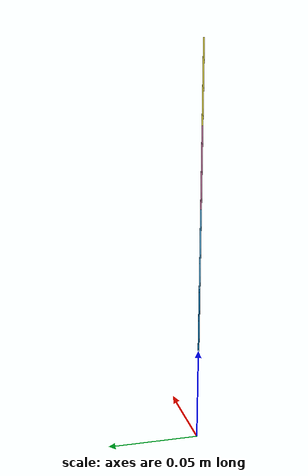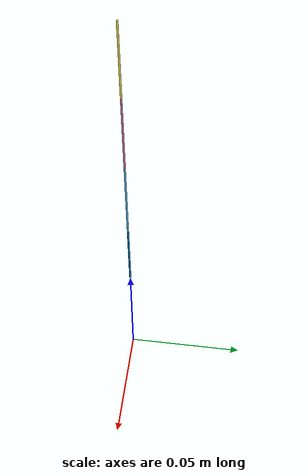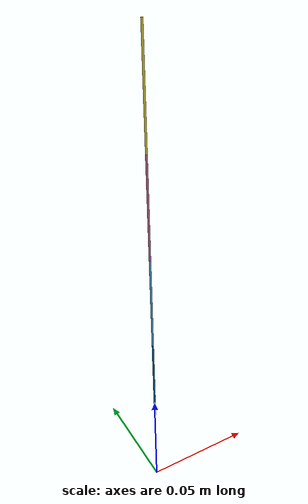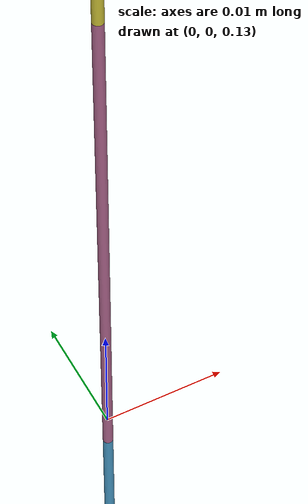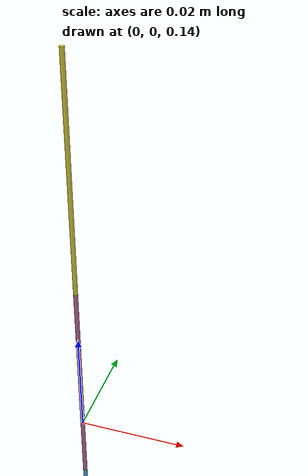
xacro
<?xml version="1.0"?>
<robot name="Needle" xmlns:xacro="http://www.ros.org/wiki/xacro">
  <xacro:include filename="$(find needle_description)/urdf/needle.xacro"/>
  <!--Maximum curvature approximation [1/m], Needle length [m], Needle diameter [m], Number of segments in mesh -->
  <xacro:needle_constructor aprx_crv="6" ndl_len="0.17" ndl_dia="0.00081" n_seg="4"/>
</robot>

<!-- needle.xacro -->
<robot xmlns:xacro="http://www.ros.org/wiki/xacro">
  <xacro:macro name="needle_segment" params="pre_name name radius length joint_limit">
    <joint name="${name}_fixed" type="fixed">
      <origin rpy="0 0 0" xyz="0 0 ${length}"/>
      <parent link="${pre_name}"/>
      <child link="${name}_fake_1"/>
    </joint>
    <link name="${name}_fake_1"/>
    <joint name="${name}_joint_1" type="revolute">
      <origin rpy="0 0 0" xyz="0 0 0"/>
      <parent link="${name}_fake_1"/>
      <child link="${name}_fake_2"/>
      <axis xyz="1 0 0"/>
      <limit upper="${joint_limit}" lower="${-joint_limit}" effort="1" velocity="1"/>
    </joint>
    <link name="${name}_fake_2"/>
     <joint name="${name}_joint_2" type="revolute">
      <origin rpy="0 0 0" xyz="0 0 0"/>
      <parent link="${name}_fake_2"/>
      <child link="${name}"/>
      <axis xyz="0 1 0"/>
      <limit upper="${joint_limit}" lower="${-joint_limit}" effort="1" velocity="1"/>
     </joint>
     <link name="${name}">
       <visual>
	 <origin rpy="0 0 0" xyz="0 0 ${length/2}"/>
	 <geometry>
	   <cylinder radius="${radius}" length="${length}"/>
	 </geometry>
       </visual>
     </link>
  </xacro:macro>

  <xacro:macro name="needle_seg_loop" params="pre_name name radius length joint_limit qty">
   <xacro:needle_segment pre_name="${pre_name}_${qty-1}" name="${pre_name}_${qty}" radius="${radius}" length="${length}" joint_limit="${joint_limit}"/>
   <xacro:if value="${qty-1}">
     <xacro:needle_seg_loop pre_name="${pre_name}" name="${name}" radius="${radius}" length="${length}" joint_limit="${joint_limit}"  qty="${qty-1}"/>
   </xacro:if>
  </xacro:macro>

  <xacro:macro name="needle_constructor" params="aprx_crv ndl_len ndl_dia n_seg">
    <link name="seg_0"/>
    <xacro:needle_seg_loop pre_name="seg" name="seg" radius="${ndl_dia/2}" length="${ndl_len/n_seg}" joint_limit="${aprx_crv*ndl_len/n_seg/2}" qty="${n_seg}"/>
    <joint name="needle_tip_joint" type="fixed">
      <origin xyz="0 0 ${ndl_len/n_seg}" rpy="0 0 0"/>
      <parent link="seg_${n_seg}"/>
      <child link="needle_tip"/>
    </joint>
    <link name="needle_tip"/>
  </xacro:macro>

</robot>
